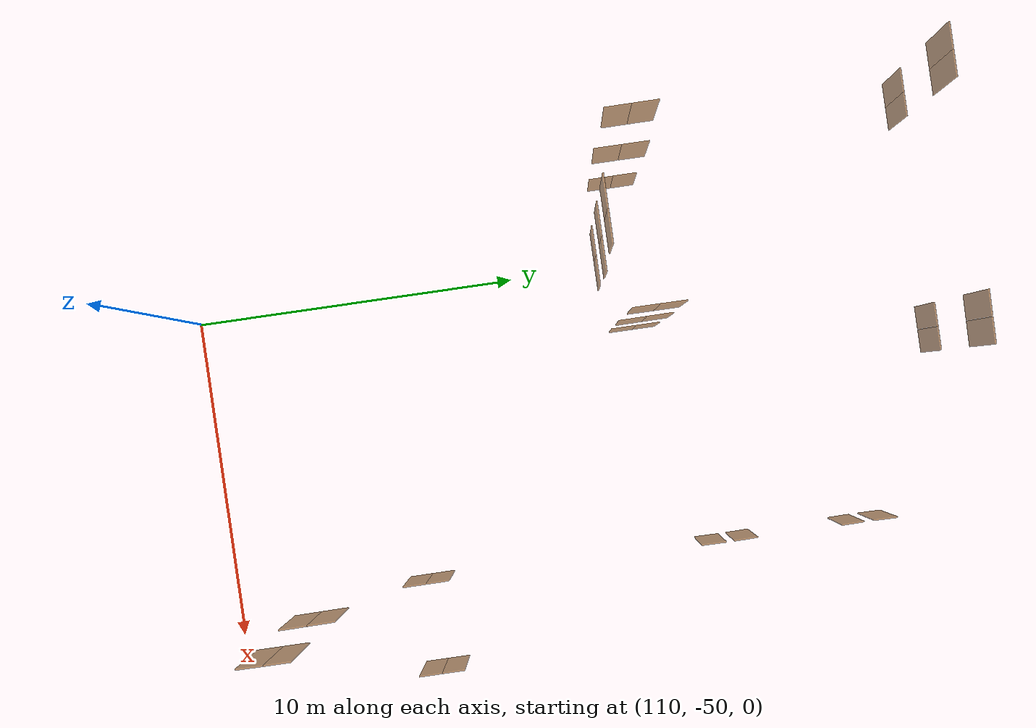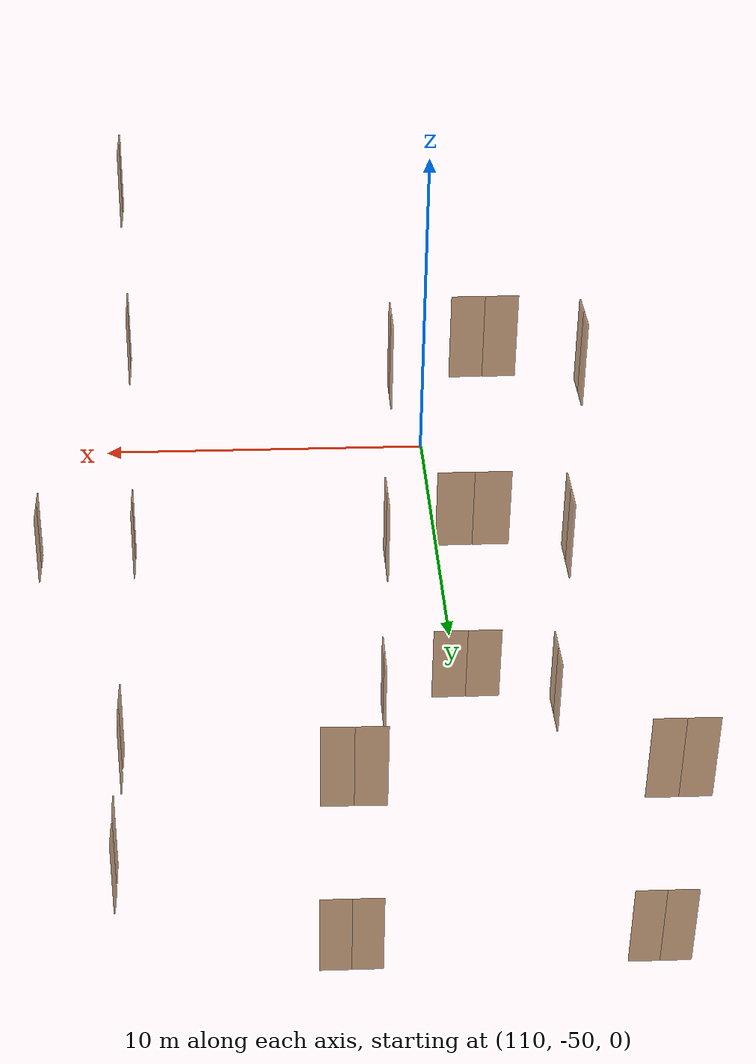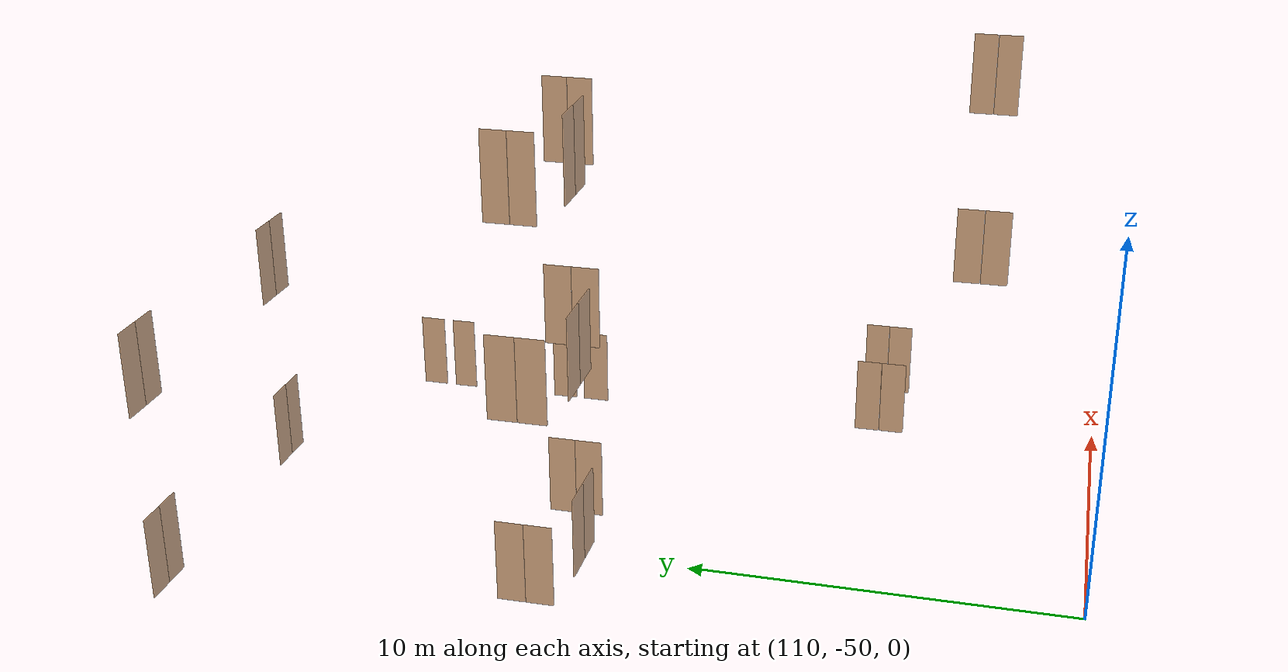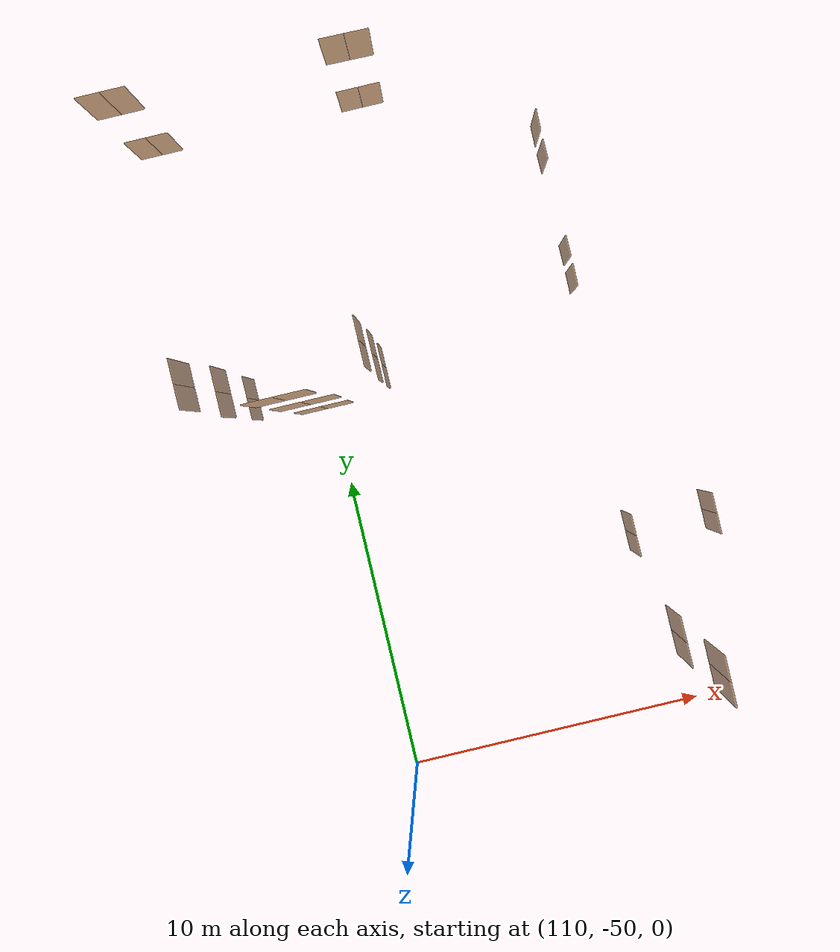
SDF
<sdf version="1.7">
 <world name="sim_world">
  <model name="p126">
   <pose>106.22790806198341 -27.347489704008787 0.0 0 0 0.0005831600636851404</pose>
   <link name="right">
    <pose>0.3715279438291925 0 1.11 0 0 0</pose>
    <visual name="right_visual">
     <geometry><box><size>0.733055887658385 0.03 2.2</size></box></geometry>
     <material>
      <ambient>0.5 0.25 0 0.6</ambient>
      <diffuse>0.5 0.25 0 0.6</diffuse>
      <pbr><metal><metalness>0.0</metalness></metal></pbr>
     </material>
    </visual>
    <collision name="right_collision">
     <geometry><box><size>0.733055887658385 0.03 2.2</size></box></geometry>
     <surface><contact><collide_bitmask>0x02</collide_bitmask></contact></surface>
    </collision>
    <inertial>
     <mass>50.0</mass>
     <inertia><ixx>20.17041666666667</ixx><iyy>22.405712226794265</iyy><izz>2.242795560127595</izz></inertia>
    </inertial>
   </link>
   <joint name="right_joint" type="revolute">
    <parent>world</parent>
    <child>right</child>
    <axis><xyz>0 0 -1</xyz><limit><lower>0</lower><upper>1.57</upper></limit></axis>
    <pose>0.3715279438291925 0 0 0 0 0</pose>
   </joint>
   <link name="left">
    <pose>-0.3715279438291925 0 1.11 0 0 0</pose>
    <visual name="left_visual">
     <geometry><box><size>0.733055887658385 0.03 2.2</size></box></geometry>
     <material>
      <ambient>0.5 0.25 0 0.6</ambient>
      <diffuse>0.5 0.25 0 0.6</diffuse>
      <pbr><metal><metalness>0.0</metalness></metal></pbr>
     </material>
    </visual>
    <collision name="left_collision">
     <geometry><box><size>0.733055887658385 0.03 2.2</size></box></geometry>
     <surface><contact><collide_bitmask>0x02</collide_bitmask></contact></surface>
    </collision>
    <inertial>
     <mass>50.0</mass>
     <inertia><ixx>20.17041666666667</ixx><iyy>22.405712226794265</iyy><izz>2.242795560127595</izz></inertia>
    </inertial>
   </link>
   <joint name="left_joint" type="revolute">
    <parent>world</parent>
    <child>left</child>
    <axis><xyz>0 0 -1</xyz><limit><lower>-1.57</lower><upper>0</upper></limit></axis>
    <pose>-0.3715279438291925 0 0 0 0 0</pose>
   </joint>
   <plugin name="register_component" filename="libregister_component.so">
    <component name="Door">
     <v_max_door>0.5</v_max_door>
     <a_max_door>0.3</a_max_door>
     <a_nom_door>0.15</a_nom_door>
     <dx_min_door>0.01</dx_min_door>
     <f_max_door>500.0</f_max_door>
     <ros_interface>true</ros_interface>
     <door name="p126" type="DoubleSwingDoor" left_joint_name="left_joint" right_joint_name="right_joint"/>
    </component>
   </plugin>
  </model>
  <model name="p127">
   <pose>113.39809561198194 -27.335212290006243 0.0 0 0 0.0</pose>
   <link name="right">
    <pose>0.3711834464163992 0 1.11 0 0 0</pose>
    <visual name="right_visual">
     <geometry><box><size>0.7323668928327984 0.03 2.2</size></box></geometry>
     <material>
      <ambient>0.5 0.25 0 0.6</ambient>
      <diffuse>0.5 0.25 0 0.6</diffuse>
      <pbr><metal><metalness>0.0</metalness></metal></pbr>
     </material>
    </visual>
    <collision name="right_collision">
     <geometry><box><size>0.7323668928327984 0.03 2.2</size></box></geometry>
     <surface><contact><collide_bitmask>0x02</collide_bitmask></contact></surface>
    </collision>
    <inertial>
     <mass>50.0</mass>
     <inertia><ixx>20.17041666666667</ixx><iyy>22.4015052738232</iyy><izz>2.238588607156532</izz></inertia>
    </inertial>
   </link>
   <joint name="right_joint" type="revolute">
    <parent>world</parent>
    <child>right</child>
    <axis><xyz>0 0 -1</xyz><limit><lower>0</lower><upper>1.57</upper></limit></axis>
    <pose>0.3711834464163992 0 0 0 0 0</pose>
   </joint>
   <link name="left">
    <pose>-0.3711834464163992 0 1.11 0 0 0</pose>
    <visual name="left_visual">
     <geometry><box><size>0.7323668928327984 0.03 2.2</size></box></geometry>
     <material>
      <ambient>0.5 0.25 0 0.6</ambient>
      <diffuse>0.5 0.25 0 0.6</diffuse>
      <pbr><metal><metalness>0.0</metalness></metal></pbr>
     </material>
    </visual>
    <collision name="left_collision">
     <geometry><box><size>0.7323668928327984 0.03 2.2</size></box></geometry>
     <surface><contact><collide_bitmask>0x02</collide_bitmask></contact></surface>
    </collision>
    <inertial>
     <mass>50.0</mass>
     <inertia><ixx>20.17041666666667</ixx><iyy>22.4015052738232</iyy><izz>2.238588607156532</izz></inertia>
    </inertial>
   </link>
   <joint name="left_joint" type="revolute">
    <parent>world</parent>
    <child>left</child>
    <axis><xyz>0 0 -1</xyz><limit><lower>-1.57</lower><upper>0</upper></limit></axis>
    <pose>-0.3711834464163992 0 0 0 0 0</pose>
   </joint>
   <plugin name="register_component" filename="libregister_component.so">
    <component name="Door">
     <v_max_door>0.5</v_max_door>
     <a_max_door>0.3</a_max_door>
     <a_nom_door>0.15</a_nom_door>
     <dx_min_door>0.01</dx_min_door>
     <f_max_door>500.0</f_max_door>
     <ros_interface>true</ros_interface>
     <door name="p127" type="DoubleSwingDoor" left_joint_name="left_joint" right_joint_name="right_joint"/>
    </component>
   </plugin>
  </model>
  <model name="p128">
   <pose>107.5139588456639 -36.43407602737699 0.0 0 0 -1.5654466083984129</pose>
   <link name="right">
    <pose>0.36864990802465264 0 1.11 0 0 0</pose>
    <visual name="right_visual">
     <geometry><box><size>0.7272998160493053 0.03 2.2</size></box></geometry>
     <material>
      <ambient>0.5 0.25 0 0.6</ambient>
      <diffuse>0.5 0.25 0 0.6</diffuse>
      <pbr><metal><metalness>0.0</metalness></metal></pbr>
     </material>
    </visual>
    <collision name="right_collision">
     <geometry><box><size>0.7272998160493053 0.03 2.2</size></box></geometry>
     <surface><contact><collide_bitmask>0x02</collide_bitmask></contact></surface>
    </collision>
    <inertial>
     <mass>50.0</mass>
     <inertia><ixx>20.17041666666667</ixx><iyy>22.370687593438976</iyy><izz>2.2077709267723056</izz></inertia>
    </inertial>
   </link>
   <joint name="right_joint" type="revolute">
    <parent>world</parent>
    <child>right</child>
    <axis><xyz>0 0 -1</xyz><limit><lower>0</lower><upper>1.57</upper></limit></axis>
    <pose>0.36864990802465264 0 0 0 0 0</pose>
   </joint>
   <link name="left">
    <pose>-0.36864990802465264 0 1.11 0 0 0</pose>
    <visual name="left_visual">
     <geometry><box><size>0.7272998160493053 0.03 2.2</size></box></geometry>
     <material>
      <ambient>0.5 0.25 0 0.6</ambient>
      <diffuse>0.5 0.25 0 0.6</diffuse>
      <pbr><metal><metalness>0.0</metalness></metal></pbr>
     </material>
    </visual>
    <collision name="left_collision">
     <geometry><box><size>0.7272998160493053 0.03 2.2</size></box></geometry>
     <surface><contact><collide_bitmask>0x02</collide_bitmask></contact></surface>
    </collision>
    <inertial>
     <mass>50.0</mass>
     <inertia><ixx>20.17041666666667</ixx><iyy>22.370687593438976</iyy><izz>2.2077709267723056</izz></inertia>
    </inertial>
   </link>
   <joint name="left_joint" type="revolute">
    <parent>world</parent>
    <child>left</child>
    <axis><xyz>0 0 -1</xyz><limit><lower>-1.57</lower><upper>0</upper></limit></axis>
    <pose>-0.36864990802465264 0 0 0 0 0</pose>
   </joint>
   <plugin name="register_component" filename="libregister_component.so">
    <component name="Door">
     <v_max_door>0.5</v_max_door>
     <a_max_door>0.3</a_max_door>
     <a_nom_door>0.15</a_nom_door>
     <dx_min_door>0.01</dx_min_door>
     <f_max_door>500.0</f_max_door>
     <ros_interface>true</ros_interface>
     <door name="p128" type="DoubleSwingDoor" left_joint_name="left_joint" right_joint_name="right_joint"/>
    </component>
   </plugin>
  </model>
  <model name="p129">
   <pose>112.08784554531726 -36.388321827501436 0.0 0 0 1.5710809539256638</pose>
   <link name="right">
    <pose>0.3708445825899116 0 1.11 0 0 0</pose>
    <visual name="right_visual">
     <geometry><box><size>0.7316891651798232 0.03 2.2</size></box></geometry>
     <material>
      <ambient>0.5 0.25 0 0.6</ambient>
      <diffuse>0.5 0.25 0 0.6</diffuse>
      <pbr><metal><metalness>0.0</metalness></metal></pbr>
     </material>
    </visual>
    <collision name="right_collision">
     <geometry><box><size>0.7316891651798232 0.03 2.2</size></box></geometry>
     <surface><contact><collide_bitmask>0x02</collide_bitmask></contact></surface>
    </collision>
    <inertial>
     <mass>50.0</mass>
     <inertia><ixx>20.17041666666667</ixx><iyy>22.39737097683978</iyy><izz>2.234454310173111</izz></inertia>
    </inertial>
   </link>
   <joint name="right_joint" type="revolute">
    <parent>world</parent>
    <child>right</child>
    <axis><xyz>0 0 -1</xyz><limit><lower>0</lower><upper>1.57</upper></limit></axis>
    <pose>0.3708445825899116 0 0 0 0 0</pose>
   </joint>
   <link name="left">
    <pose>-0.3708445825899116 0 1.11 0 0 0</pose>
    <visual name="left_visual">
     <geometry><box><size>0.7316891651798232 0.03 2.2</size></box></geometry>
     <material>
      <ambient>0.5 0.25 0 0.6</ambient>
      <diffuse>0.5 0.25 0 0.6</diffuse>
      <pbr><metal><metalness>0.0</metalness></metal></pbr>
     </material>
    </visual>
    <collision name="left_collision">
     <geometry><box><size>0.7316891651798232 0.03 2.2</size></box></geometry>
     <surface><contact><collide_bitmask>0x02</collide_bitmask></contact></surface>
    </collision>
    <inertial>
     <mass>50.0</mass>
     <inertia><ixx>20.17041666666667</ixx><iyy>22.39737097683978</iyy><izz>2.234454310173111</izz></inertia>
    </inertial>
   </link>
   <joint name="left_joint" type="revolute">
    <parent>world</parent>
    <child>left</child>
    <axis><xyz>0 0 -1</xyz><limit><lower>-1.57</lower><upper>0</upper></limit></axis>
    <pose>-0.3708445825899116 0 0 0 0 0</pose>
   </joint>
   <plugin name="register_component" filename="libregister_component.so">
    <component name="Door">
     <v_max_door>0.5</v_max_door>
     <a_max_door>0.3</a_max_door>
     <a_nom_door>0.15</a_nom_door>
     <dx_min_door>0.01</dx_min_door>
     <f_max_door>500.0</f_max_door>
     <ros_interface>true</ros_interface>
     <door name="p129" type="DoubleSwingDoor" left_joint_name="left_joint" right_joint_name="right_joint"/>
    </component>
   </plugin>
  </model>
  <model name="p130">
   <pose>109.81211297443048 -37.27618440935086 0.0 0 0 3.141592653589793</pose>
   <link name="right">
    <pose>0.4568031317590595 0 1.11 0 0 0</pose>
    <visual name="right_visual">
     <geometry><box><size>0.903606263518119 0.03 2.2</size></box></geometry>
     <material>
      <ambient>0.5 0.25 0 0.6</ambient>
      <diffuse>0.5 0.25 0 0.6</diffuse>
      <pbr><metal><metalness>0.0</metalness></metal></pbr>
     </material>
    </visual>
    <collision name="right_collision">
     <geometry><box><size>0.903606263518119 0.03 2.2</size></box></geometry>
     <surface><contact><collide_bitmask>0x02</collide_bitmask></contact></surface>
    </collision>
    <inertial>
     <mass>50.0</mass>
     <inertia><ixx>20.17041666666667</ixx><iyy>23.568767831121573</iyy><izz>3.405851164454902</izz></inertia>
    </inertial>
   </link>
   <joint name="right_joint" type="revolute">
    <parent>world</parent>
    <child>right</child>
    <axis><xyz>0 0 -1</xyz><limit><lower>0</lower><upper>1.57</upper></limit></axis>
    <pose>0.4568031317590595 0 0 0 0 0</pose>
   </joint>
   <link name="left">
    <pose>-0.4568031317590595 0 1.11 0 0 0</pose>
    <visual name="left_visual">
     <geometry><box><size>0.903606263518119 0.03 2.2</size></box></geometry>
     <material>
      <ambient>0.5 0.25 0 0.6</ambient>
      <diffuse>0.5 0.25 0 0.6</diffuse>
      <pbr><metal><metalness>0.0</metalness></metal></pbr>
     </material>
    </visual>
    <collision name="left_collision">
     <geometry><box><size>0.903606263518119 0.03 2.2</size></box></geometry>
     <surface><contact><collide_bitmask>0x02</collide_bitmask></contact></surface>
    </collision>
    <inertial>
     <mass>50.0</mass>
     <inertia><ixx>20.17041666666667</ixx><iyy>23.568767831121573</iyy><izz>3.405851164454902</izz></inertia>
    </inertial>
   </link>
   <joint name="left_joint" type="revolute">
    <parent>world</parent>
    <child>left</child>
    <axis><xyz>0 0 -1</xyz><limit><lower>-1.57</lower><upper>0</upper></limit></axis>
    <pose>-0.4568031317590595 0 0 0 0 0</pose>
   </joint>
   <plugin name="register_component" filename="libregister_component.so">
    <component name="Door">
     <v_max_door>0.5</v_max_door>
     <a_max_door>0.3</a_max_door>
     <a_nom_door>0.15</a_nom_door>
     <dx_min_door>0.01</dx_min_door>
     <f_max_door>500.0</f_max_door>
     <ros_interface>true</ros_interface>
     <door name="p130" type="DoubleSwingDoor" left_joint_name="left_joint" right_joint_name="right_joint"/>
    </component>
   </plugin>
  </model>
  <model name="p135">
   <pose>118.94127581405004 -29.71251962904805 0.0 0 0 -1.5863807261847631</pose>
   <link name="right">
    <pose>0 0 1.11 0 0 0</pose>
    <visual name="right_visual">
     <geometry><box><size>0.7314902971582903 0.03 2.2</size></box></geometry>
     <material>
      <ambient>0.5 0.25 0 0.6</ambient>
      <diffuse>0.5 0.25 0 0.6</diffuse>
      <pbr><metal><metalness>0.0</metalness></metal></pbr>
     </material>
    </visual>
    <collision name="right_collision">
     <geometry><box><size>0.7314902971582903 0.03 2.2</size></box></geometry>
     <surface><contact><collide_bitmask>0x02</collide_bitmask></contact></surface>
    </collision>
    <inertial>
     <mass>50.0</mass>
     <inertia><ixx>20.17041666666667</ixx><iyy>22.39615856181969</iyy><izz>2.2332418951530157</izz></inertia>
    </inertial>
   </link>
   <joint name="right_joint" type="revolute">
    <parent>world</parent>
    <child>right</child>
    <axis><xyz>0 0 -1</xyz><limit><lower>0</lower><upper>1.57</upper></limit></axis>
    <pose>0.37074514857914515 0 0 0 0 0</pose>
   </joint>
   <plugin name="register_component" filename="libregister_component.so">
    <component name="Door">
     <v_max_door>0.5</v_max_door>
     <a_max_door>0.3</a_max_door>
     <a_nom_door>0.15</a_nom_door>
     <dx_min_door>0.01</dx_min_door>
     <f_max_door>500.0</f_max_door>
     <ros_interface>true</ros_interface>
     <door name="p135" type="SwingDoor" left_joint_name="empty_joint" right_joint_name="right_joint"/>
    </component>
   </plugin>
  </model>
  <model name="p136">
   <pose>118.94016473585977 -30.710290065479562 0.0 0 0 1.5843613861672066</pose>
   <link name="right">
    <pose>0 0 1.11 0 0 0</pose>
    <visual name="right_visual">
     <geometry><box><size>0.678042918124303 0.03 2.2</size></box></geometry>
     <material>
      <ambient>0.5 0.25 0 0.6</ambient>
      <diffuse>0.5 0.25 0 0.6</diffuse>
      <pbr><metal><metalness>0.0</metalness></metal></pbr>
     </material>
    </visual>
    <collision name="right_collision">
     <geometry><box><size>0.678042918124303 0.03 2.2</size></box></geometry>
     <surface><contact><collide_bitmask>0x02</collide_bitmask></contact></surface>
    </collision>
    <inertial>
     <mass>50.0</mass>
     <inertia><ixx>20.17041666666667</ixx><iyy>22.08225916174384</iyy><izz>1.9193424950771676</izz></inertia>
    </inertial>
   </link>
   <joint name="right_joint" type="revolute">
    <parent>world</parent>
    <child>right</child>
    <axis><xyz>0 0 1</xyz><limit><lower>0</lower><upper>1.57</upper></limit></axis>
    <pose>0.3440214590621515 0 0 0 0 0</pose>
   </joint>
   <plugin name="register_component" filename="libregister_component.so">
    <component name="Door">
     <v_max_door>0.5</v_max_door>
     <a_max_door>0.3</a_max_door>
     <a_nom_door>0.15</a_nom_door>
     <dx_min_door>0.01</dx_min_door>
     <f_max_door>500.0</f_max_door>
     <ros_interface>true</ros_interface>
     <door name="p136" type="SwingDoor" left_joint_name="empty_joint" right_joint_name="right_joint"/>
    </component>
   </plugin>
  </model>
  <model name="p137">
   <pose>118.94985333767897 -33.9887595923084 0.0 0 0 -1.5569377102186739</pose>
   <link name="right">
    <pose>0 0 1.11 0 0 0</pose>
    <visual name="right_visual">
     <geometry><box><size>0.7147814604932263 0.03 2.2</size></box></geometry>
     <material>
      <ambient>0.5 0.25 0 0.6</ambient>
      <diffuse>0.5 0.25 0 0.6</diffuse>
      <pbr><metal><metalness>0.0</metalness></metal></pbr>
     </material>
    </visual>
    <collision name="right_collision">
     <geometry><box><size>0.7147814604932263 0.03 2.2</size></box></geometry>
     <surface><contact><collide_bitmask>0x02</collide_bitmask></contact></surface>
    </collision>
    <inertial>
     <mass>50.0</mass>
     <inertia><ixx>20.17041666666667</ixx><iyy>22.295468901103465</iyy><izz>2.1325522344367904</izz></inertia>
    </inertial>
   </link>
   <joint name="right_joint" type="revolute">
    <parent>world</parent>
    <child>right</child>
    <axis><xyz>0 0 -1</xyz><limit><lower>0</lower><upper>1.57</upper></limit></axis>
    <pose>0.36239073024661317 0 0 0 0 0</pose>
   </joint>
   <plugin name="register_component" filename="libregister_component.so">
    <component name="Door">
     <v_max_door>0.5</v_max_door>
     <a_max_door>0.3</a_max_door>
     <a_nom_door>0.15</a_nom_door>
     <dx_min_door>0.01</dx_min_door>
     <f_max_door>500.0</f_max_door>
     <ros_interface>true</ros_interface>
     <door name="p137" type="SwingDoor" left_joint_name="empty_joint" right_joint_name="right_joint"/>
    </component>
   </plugin>
  </model>
  <model name="p138">
   <pose>118.95024221504556 -34.972163787739646 0.0 0 0 1.558779614172004</pose>
   <link name="right">
    <pose>0 0 1.11 0 0 0</pose>
    <visual name="right_visual">
     <geometry><box><size>0.7611439405069239 0.03 2.2</size></box></geometry>
     <material>
      <ambient>0.5 0.25 0 0.6</ambient>
      <diffuse>0.5 0.25 0 0.6</diffuse>
      <pbr><metal><metalness>0.0</metalness></metal></pbr>
     </material>
    </visual>
    <collision name="right_collision">
     <geometry><box><size>0.7611439405069239 0.03 2.2</size></box></geometry>
     <surface><contact><collide_bitmask>0x02</collide_bitmask></contact></surface>
    </collision>
    <inertial>
     <mass>50.0</mass>
     <inertia><ixx>20.17041666666667</ixx><iyy>22.580583742376703</iyy><izz>2.4176670757100327</izz></inertia>
    </inertial>
   </link>
   <joint name="right_joint" type="revolute">
    <parent>world</parent>
    <child>right</child>
    <axis><xyz>0 0 1</xyz><limit><lower>0</lower><upper>1.57</upper></limit></axis>
    <pose>0.38557197025346196 0 0 0 0 0</pose>
   </joint>
   <plugin name="register_component" filename="libregister_component.so">
    <component name="Door">
     <v_max_door>0.5</v_max_door>
     <a_max_door>0.3</a_max_door>
     <a_nom_door>0.15</a_nom_door>
     <dx_min_door>0.01</dx_min_door>
     <f_max_door>500.0</f_max_door>
     <ros_interface>true</ros_interface>
     <door name="p138" type="SwingDoor" left_joint_name="empty_joint" right_joint_name="right_joint"/>
    </component>
   </plugin>
  </model>
  <model name="p166">
   <pose>118.92442075790356 -43.7870803828035 0.0 0 0 -1.5655743207711172</pose>
   <link name="right">
    <pose>0.3585164879004398 0 1.11 0 0 0</pose>
    <visual name="right_visual">
     <geometry><box><size>0.7070329758008795 0.03 2.2</size></box></geometry>
     <material>
      <ambient>0.5 0.25 0 0.6</ambient>
      <diffuse>0.5 0.25 0 0.6</diffuse>
      <pbr><metal><metalness>0.0</metalness></metal></pbr>
     </material>
    </visual>
    <collision name="right_collision">
     <geometry><box><size>0.7070329758008795 0.03 2.2</size></box></geometry>
     <surface><contact><collide_bitmask>0x02</collide_bitmask></contact></surface>
    </collision>
    <inertial>
     <mass>50.0</mass>
     <inertia><ixx>20.17041666666667</ixx><iyy>22.249565120291035</iyy><izz>2.086648453624363</izz></inertia>
    </inertial>
   </link>
   <joint name="right_joint" type="revolute">
    <parent>world</parent>
    <child>right</child>
    <axis><xyz>0 0 -1</xyz><limit><lower>0</lower><upper>1.57</upper></limit></axis>
    <pose>0.3585164879004398 0 0 0 0 0</pose>
   </joint>
   <link name="left">
    <pose>-0.3585164879004398 0 1.11 0 0 0</pose>
    <visual name="left_visual">
     <geometry><box><size>0.7070329758008795 0.03 2.2</size></box></geometry>
     <material>
      <ambient>0.5 0.25 0 0.6</ambient>
      <diffuse>0.5 0.25 0 0.6</diffuse>
      <pbr><metal><metalness>0.0</metalness></metal></pbr>
     </material>
    </visual>
    <collision name="left_collision">
     <geometry><box><size>0.7070329758008795 0.03 2.2</size></box></geometry>
     <surface><contact><collide_bitmask>0x02</collide_bitmask></contact></surface>
    </collision>
    <inertial>
     <mass>50.0</mass>
     <inertia><ixx>20.17041666666667</ixx><iyy>22.249565120291035</iyy><izz>2.086648453624363</izz></inertia>
    </inertial>
   </link>
   <joint name="left_joint" type="revolute">
    <parent>world</parent>
    <child>left</child>
    <axis><xyz>0 0 -1</xyz><limit><lower>-1.57</lower><upper>0</upper></limit></axis>
    <pose>-0.3585164879004398 0 0 0 0 0</pose>
   </joint>
   <plugin name="register_component" filename="libregister_component.so">
    <component name="Door">
     <v_max_door>0.5</v_max_door>
     <a_max_door>0.3</a_max_door>
     <a_nom_door>0.15</a_nom_door>
     <dx_min_door>0.01</dx_min_door>
     <f_max_door>500.0</f_max_door>
     <ros_interface>true</ros_interface>
     <door name="p166" type="DoubleSwingDoor" left_joint_name="left_joint" right_joint_name="right_joint"/>
    </component>
   </plugin>
  </model>
  <model name="p167">
   <pose>121.67436150040007 -43.68229459867859 0.0 0 0 -1.5689036247144859</pose>
   <link name="right">
    <pose>0.3492847209109035 0 1.11 0 0 0</pose>
    <visual name="right_visual">
     <geometry><box><size>0.688569441821807 0.03 2.2</size></box></geometry>
     <material>
      <ambient>0.5 0.25 0 0.6</ambient>
      <diffuse>0.5 0.25 0 0.6</diffuse>
      <pbr><metal><metalness>0.0</metalness></metal></pbr>
     </material>
    </visual>
    <collision name="right_collision">
     <geometry><box><size>0.688569441821807 0.03 2.2</size></box></geometry>
     <surface><contact><collide_bitmask>0x02</collide_bitmask></contact></surface>
    </collision>
    <inertial>
     <mass>50.0</mass>
     <inertia><ixx>20.17041666666667</ixx><iyy>22.14219948421165</iyy><izz>1.9792828175449788</izz></inertia>
    </inertial>
   </link>
   <joint name="right_joint" type="revolute">
    <parent>world</parent>
    <child>right</child>
    <axis><xyz>0 0 -1</xyz><limit><lower>0</lower><upper>1.57</upper></limit></axis>
    <pose>0.3492847209109035 0 0 0 0 0</pose>
   </joint>
   <link name="left">
    <pose>-0.3492847209109035 0 1.11 0 0 0</pose>
    <visual name="left_visual">
     <geometry><box><size>0.688569441821807 0.03 2.2</size></box></geometry>
     <material>
      <ambient>0.5 0.25 0 0.6</ambient>
      <diffuse>0.5 0.25 0 0.6</diffuse>
      <pbr><metal><metalness>0.0</metalness></metal></pbr>
     </material>
    </visual>
    <collision name="left_collision">
     <geometry><box><size>0.688569441821807 0.03 2.2</size></box></geometry>
     <surface><contact><collide_bitmask>0x02</collide_bitmask></contact></surface>
    </collision>
    <inertial>
     <mass>50.0</mass>
     <inertia><ixx>20.17041666666667</ixx><iyy>22.14219948421165</iyy><izz>1.9792828175449788</izz></inertia>
    </inertial>
   </link>
   <joint name="left_joint" type="revolute">
    <parent>world</parent>
    <child>left</child>
    <axis><xyz>0 0 -1</xyz><limit><lower>-1.57</lower><upper>0</upper></limit></axis>
    <pose>-0.3492847209109035 0 0 0 0 0</pose>
   </joint>
   <plugin name="register_component" filename="libregister_component.so">
    <component name="Door">
     <v_max_door>0.5</v_max_door>
     <a_max_door>0.3</a_max_door>
     <a_nom_door>0.15</a_nom_door>
     <dx_min_door>0.01</dx_min_door>
     <f_max_door>500.0</f_max_door>
     <ros_interface>true</ros_interface>
     <door name="p167" type="DoubleSwingDoor" left_joint_name="left_joint" right_joint_name="right_joint"/>
    </component>
   </plugin>
  </model>
  <model name="puerta23">
   <pose>118.91790391669002 -46.442915310247415 5.0 0 0 1.5815670690349113</pose>
   <link name="right">
    <pose>0.38305469390130353 0 1.11 0 0 0</pose>
    <visual name="right_visual">
     <geometry><box><size>0.7561093878026071 0.03 2.2</size></box></geometry>
     <material>
      <ambient>0.5 0.25 0 0.6</ambient>
      <diffuse>0.5 0.25 0 0.6</diffuse>
      <pbr><metal><metalness>0.0</metalness></metal></pbr>
     </material>
    </visual>
    <collision name="right_collision">
     <geometry><box><size>0.7561093878026071 0.03 2.2</size></box></geometry>
     <surface><contact><collide_bitmask>0x02</collide_bitmask></contact></surface>
    </collision>
    <inertial>
     <mass>50.0</mass>
     <inertia><ixx>20.17041666666667</ixx><iyy>22.548755859680142</iyy><izz>2.3858391930134717</izz></inertia>
    </inertial>
   </link>
   <joint name="right_joint" type="revolute">
    <parent>world</parent>
    <child>right</child>
    <axis><xyz>0 0 1</xyz><limit><lower>0</lower><upper>1.57</upper></limit></axis>
    <pose>0.38305469390130353 0 0 0 0 0</pose>
   </joint>
   <link name="left">
    <pose>-0.38305469390130353 0 1.11 0 0 0</pose>
    <visual name="left_visual">
     <geometry><box><size>0.7561093878026071 0.03 2.2</size></box></geometry>
     <material>
      <ambient>0.5 0.25 0 0.6</ambient>
      <diffuse>0.5 0.25 0 0.6</diffuse>
      <pbr><metal><metalness>0.0</metalness></metal></pbr>
     </material>
    </visual>
    <collision name="left_collision">
     <geometry><box><size>0.7561093878026071 0.03 2.2</size></box></geometry>
     <surface><contact><collide_bitmask>0x02</collide_bitmask></contact></surface>
    </collision>
    <inertial>
     <mass>50.0</mass>
     <inertia><ixx>20.17041666666667</ixx><iyy>22.548755859680142</iyy><izz>2.3858391930134717</izz></inertia>
    </inertial>
   </link>
   <joint name="left_joint" type="revolute">
    <parent>world</parent>
    <child>left</child>
    <axis><xyz>0 0 1</xyz><limit><lower>-1.57</lower><upper>0</upper></limit></axis>
    <pose>-0.38305469390130353 0 0 0 0 0</pose>
   </joint>
   <plugin name="register_component" filename="libregister_component.so">
    <component name="Door">
     <v_max_door>0.5</v_max_door>
     <a_max_door>0.3</a_max_door>
     <a_nom_door>0.15</a_nom_door>
     <dx_min_door>0.01</dx_min_door>
     <f_max_door>500.0</f_max_door>
     <ros_interface>true</ros_interface>
     <door name="puerta23" type="DoubleSwingDoor" left_joint_name="left_joint" right_joint_name="right_joint"/>
    </component>
   </plugin>
  </model>
  <model name="puerta81">
   <pose>109.828570021357 -37.26032395037422 5.0 0 0 -3.1414395949889693</pose>
   <link name="right">
    <pose>0.47375336932335305 0 1.11 0 0 0</pose>
    <visual name="right_visual">
     <geometry><box><size>0.9375067386467061 0.03 2.2</size></box></geometry>
     <material>
      <ambient>0.5 0.25 0 0.6</ambient>
      <diffuse>0.5 0.25 0 0.6</diffuse>
      <pbr><metal><metalness>0.0</metalness></metal></pbr>
     </material>
    </visual>
    <collision name="right_collision">
     <geometry><box><size>0.9375067386467061 0.03 2.2</size></box></geometry>
     <surface><contact><collide_bitmask>0x02</collide_bitmask></contact></surface>
    </collision>
    <inertial>
     <mass>50.0</mass>
     <inertia><ixx>20.17041666666667</ixx><iyy>23.828828687533267</iyy><izz>3.6659120208665974</izz></inertia>
    </inertial>
   </link>
   <joint name="right_joint" type="revolute">
    <parent>world</parent>
    <child>right</child>
    <axis><xyz>0 0 -1</xyz><limit><lower>0</lower><upper>1.57</upper></limit></axis>
    <pose>0.47375336932335305 0 0 0 0 0</pose>
   </joint>
   <link name="left">
    <pose>-0.47375336932335305 0 1.11 0 0 0</pose>
    <visual name="left_visual">
     <geometry><box><size>0.9375067386467061 0.03 2.2</size></box></geometry>
     <material>
      <ambient>0.5 0.25 0 0.6</ambient>
      <diffuse>0.5 0.25 0 0.6</diffuse>
      <pbr><metal><metalness>0.0</metalness></metal></pbr>
     </material>
    </visual>
    <collision name="left_collision">
     <geometry><box><size>0.9375067386467061 0.03 2.2</size></box></geometry>
     <surface><contact><collide_bitmask>0x02</collide_bitmask></contact></surface>
    </collision>
    <inertial>
     <mass>50.0</mass>
     <inertia><ixx>20.17041666666667</ixx><iyy>23.828828687533267</iyy><izz>3.6659120208665974</izz></inertia>
    </inertial>
   </link>
   <joint name="left_joint" type="revolute">
    <parent>world</parent>
    <child>left</child>
    <axis><xyz>0 0 -1</xyz><limit><lower>-1.57</lower><upper>0</upper></limit></axis>
    <pose>-0.47375336932335305 0 0 0 0 0</pose>
   </joint>
   <plugin name="register_component" filename="libregister_component.so">
    <component name="Door">
     <v_max_door>0.5</v_max_door>
     <a_max_door>0.3</a_max_door>
     <a_nom_door>0.15</a_nom_door>
     <dx_min_door>0.01</dx_min_door>
     <f_max_door>500.0</f_max_door>
     <ros_interface>true</ros_interface>
     <door name="puerta81" type="DoubleSwingDoor" left_joint_name="left_joint" right_joint_name="right_joint"/>
    </component>
   </plugin>
  </model>
  <model name="puerta82">
   <pose>107.51228227724764 -36.39963601140706 5.0 0 0 -1.5710862818394422</pose>
   <link name="right">
    <pose>0.37624912113745007 0 1.11 0 0 0</pose>
    <visual name="right_visual">
     <geometry><box><size>0.7424982422749001 0.03 2.2</size></box></geometry>
     <material>
      <ambient>0.5 0.25 0 0.6</ambient>
      <diffuse>0.5 0.25 0 0.6</diffuse>
      <pbr><metal><metalness>0.0</metalness></metal></pbr>
     </material>
    </visual>
    <collision name="right_collision">
     <geometry><box><size>0.7424982422749001 0.03 2.2</size></box></geometry>
     <surface><contact><collide_bitmask>0x02</collide_bitmask></contact></surface>
    </collision>
    <inertial>
     <mass>50.0</mass>
     <inertia><ixx>20.17041666666667</ixx><iyy>22.463765165755486</iyy><izz>2.300848499088818</izz></inertia>
    </inertial>
   </link>
   <joint name="right_joint" type="revolute">
    <parent>world</parent>
    <child>right</child>
    <axis><xyz>0 0 -1</xyz><limit><lower>0</lower><upper>1.57</upper></limit></axis>
    <pose>0.37624912113745007 0 0 0 0 0</pose>
   </joint>
   <link name="left">
    <pose>-0.37624912113745007 0 1.11 0 0 0</pose>
    <visual name="left_visual">
     <geometry><box><size>0.7424982422749001 0.03 2.2</size></box></geometry>
     <material>
      <ambient>0.5 0.25 0 0.6</ambient>
      <diffuse>0.5 0.25 0 0.6</diffuse>
      <pbr><metal><metalness>0.0</metalness></metal></pbr>
     </material>
    </visual>
    <collision name="left_collision">
     <geometry><box><size>0.7424982422749001 0.03 2.2</size></box></geometry>
     <surface><contact><collide_bitmask>0x02</collide_bitmask></contact></surface>
    </collision>
    <inertial>
     <mass>50.0</mass>
     <inertia><ixx>20.17041666666667</ixx><iyy>22.463765165755486</iyy><izz>2.300848499088818</izz></inertia>
    </inertial>
   </link>
   <joint name="left_joint" type="revolute">
    <parent>world</parent>
    <child>left</child>
    <axis><xyz>0 0 -1</xyz><limit><lower>-1.57</lower><upper>0</upper></limit></axis>
    <pose>-0.37624912113745007 0 0 0 0 0</pose>
   </joint>
   <plugin name="register_component" filename="libregister_component.so">
    <component name="Door">
     <v_max_door>0.5</v_max_door>
     <a_max_door>0.3</a_max_door>
     <a_nom_door>0.15</a_nom_door>
     <dx_min_door>0.01</dx_min_door>
     <f_max_door>500.0</f_max_door>
     <ros_interface>true</ros_interface>
     <door name="puerta82" type="DoubleSwingDoor" left_joint_name="left_joint" right_joint_name="right_joint"/>
    </component>
   </plugin>
  </model>
  <model name="puerta83">
   <pose>112.1007556834348 -36.39406654813839 5.0 0 0 1.5772090610513327</pose>
   <link name="right">
    <pose>0.3701334955898605 0 1.11 0 0 0</pose>
    <visual name="right_visual">
     <geometry><box><size>0.7302669911797209 0.03 2.2</size></box></geometry>
     <material>
      <ambient>0.5 0.25 0 0.6</ambient>
      <diffuse>0.5 0.25 0 0.6</diffuse>
      <pbr><metal><metalness>0.0</metalness></metal></pbr>
     </material>
    </visual>
    <collision name="right_collision">
     <geometry><box><size>0.7302669911797209 0.03 2.2</size></box></geometry>
     <surface><contact><collide_bitmask>0x02</collide_bitmask></contact></surface>
    </collision>
    <inertial>
     <mass>50.0</mass>
     <inertia><ixx>20.17041666666667</ixx><iyy>22.388707826694514</iyy><izz>2.2257911600278444</izz></inertia>
    </inertial>
   </link>
   <joint name="right_joint" type="revolute">
    <parent>world</parent>
    <child>right</child>
    <axis><xyz>0 0 -1</xyz><limit><lower>0</lower><upper>1.57</upper></limit></axis>
    <pose>0.3701334955898605 0 0 0 0 0</pose>
   </joint>
   <link name="left">
    <pose>-0.3701334955898605 0 1.11 0 0 0</pose>
    <visual name="left_visual">
     <geometry><box><size>0.7302669911797209 0.03 2.2</size></box></geometry>
     <material>
      <ambient>0.5 0.25 0 0.6</ambient>
      <diffuse>0.5 0.25 0 0.6</diffuse>
      <pbr><metal><metalness>0.0</metalness></metal></pbr>
     </material>
    </visual>
    <collision name="left_collision">
     <geometry><box><size>0.7302669911797209 0.03 2.2</size></box></geometry>
     <surface><contact><collide_bitmask>0x02</collide_bitmask></contact></surface>
    </collision>
    <inertial>
     <mass>50.0</mass>
     <inertia><ixx>20.17041666666667</ixx><iyy>22.388707826694514</iyy><izz>2.2257911600278444</izz></inertia>
    </inertial>
   </link>
   <joint name="left_joint" type="revolute">
    <parent>world</parent>
    <child>left</child>
    <axis><xyz>0 0 -1</xyz><limit><lower>-1.57</lower><upper>0</upper></limit></axis>
    <pose>-0.3701334955898605 0 0 0 0 0</pose>
   </joint>
   <plugin name="register_component" filename="libregister_component.so">
    <component name="Door">
     <v_max_door>0.5</v_max_door>
     <a_max_door>0.3</a_max_door>
     <a_nom_door>0.15</a_nom_door>
     <dx_min_door>0.01</dx_min_door>
     <f_max_door>500.0</f_max_door>
     <ros_interface>true</ros_interface>
     <door name="puerta83" type="DoubleSwingDoor" left_joint_name="left_joint" right_joint_name="right_joint"/>
    </component>
   </plugin>
  </model>
  <model name="puerta84">
   <pose>106.24265931915869 -27.358428835902476 5.0 0 0 0.00015305860082430423</pose>
   <link name="right">
    <pose>0.3730487612219118 0 1.11 0 0 0</pose>
    <visual name="right_visual">
     <geometry><box><size>0.7360975224438235 0.03 2.2</size></box></geometry>
     <material>
      <ambient>0.5 0.25 0 0.6</ambient>
      <diffuse>0.5 0.25 0 0.6</diffuse>
      <pbr><metal><metalness>0.0</metalness></metal></pbr>
     </material>
    </visual>
    <collision name="right_collision">
     <geometry><box><size>0.7360975224438235 0.03 2.2</size></box></geometry>
     <surface><contact><collide_bitmask>0x02</collide_bitmask></contact></surface>
    </collision>
    <inertial>
     <mass>50.0</mass>
     <inertia><ixx>20.17041666666667</ixx><iyy>22.424331510616405</iyy><izz>2.261414843949731</izz></inertia>
    </inertial>
   </link>
   <joint name="right_joint" type="revolute">
    <parent>world</parent>
    <child>right</child>
    <axis><xyz>0 0 -1</xyz><limit><lower>0</lower><upper>1.57</upper></limit></axis>
    <pose>0.3730487612219118 0 0 0 0 0</pose>
   </joint>
   <link name="left">
    <pose>-0.3730487612219118 0 1.11 0 0 0</pose>
    <visual name="left_visual">
     <geometry><box><size>0.7360975224438235 0.03 2.2</size></box></geometry>
     <material>
      <ambient>0.5 0.25 0 0.6</ambient>
      <diffuse>0.5 0.25 0 0.6</diffuse>
      <pbr><metal><metalness>0.0</metalness></metal></pbr>
     </material>
    </visual>
    <collision name="left_collision">
     <geometry><box><size>0.7360975224438235 0.03 2.2</size></box></geometry>
     <surface><contact><collide_bitmask>0x02</collide_bitmask></contact></surface>
    </collision>
    <inertial>
     <mass>50.0</mass>
     <inertia><ixx>20.17041666666667</ixx><iyy>22.424331510616405</iyy><izz>2.261414843949731</izz></inertia>
    </inertial>
   </link>
   <joint name="left_joint" type="revolute">
    <parent>world</parent>
    <child>left</child>
    <axis><xyz>0 0 -1</xyz><limit><lower>-1.57</lower><upper>0</upper></limit></axis>
    <pose>-0.3730487612219118 0 0 0 0 0</pose>
   </joint>
   <plugin name="register_component" filename="libregister_component.so">
    <component name="Door">
     <v_max_door>0.5</v_max_door>
     <a_max_door>0.3</a_max_door>
     <a_nom_door>0.15</a_nom_door>
     <dx_min_door>0.01</dx_min_door>
     <f_max_door>500.0</f_max_door>
     <ros_interface>true</ros_interface>
     <door name="puerta84" type="DoubleSwingDoor" left_joint_name="left_joint" right_joint_name="right_joint"/>
    </component>
   </plugin>
  </model>
  <model name="puerta87">
   <pose>113.38915490066145 -27.335277221274165 5.0 0 0 -0.016184671702972744</pose>
   <link name="right">
    <pose>0.3710425166859308 0 1.11 0 0 0</pose>
    <visual name="right_visual">
     <geometry><box><size>0.7320850333718616 0.03 2.2</size></box></geometry>
     <material>
      <ambient>0.5 0.25 0 0.6</ambient>
      <diffuse>0.5 0.25 0 0.6</diffuse>
      <pbr><metal><metalness>0.0</metalness></metal></pbr>
     </material>
    </visual>
    <collision name="right_collision">
     <geometry><box><size>0.7320850333718616 0.03 2.2</size></box></geometry>
     <surface><contact><collide_bitmask>0x02</collide_bitmask></contact></surface>
    </collision>
    <inertial>
     <mass>50.0</mass>
     <inertia><ixx>20.17041666666667</ixx><iyy>22.399785400362834</iyy><izz>2.236868733696166</izz></inertia>
    </inertial>
   </link>
   <joint name="right_joint" type="revolute">
    <parent>world</parent>
    <child>right</child>
    <axis><xyz>0 0 -1</xyz><limit><lower>0</lower><upper>1.57</upper></limit></axis>
    <pose>0.3710425166859308 0 0 0 0 0</pose>
   </joint>
   <link name="left">
    <pose>-0.3710425166859308 0 1.11 0 0 0</pose>
    <visual name="left_visual">
     <geometry><box><size>0.7320850333718616 0.03 2.2</size></box></geometry>
     <material>
      <ambient>0.5 0.25 0 0.6</ambient>
      <diffuse>0.5 0.25 0 0.6</diffuse>
      <pbr><metal><metalness>0.0</metalness></metal></pbr>
     </material>
    </visual>
    <collision name="left_collision">
     <geometry><box><size>0.7320850333718616 0.03 2.2</size></box></geometry>
     <surface><contact><collide_bitmask>0x02</collide_bitmask></contact></surface>
    </collision>
    <inertial>
     <mass>50.0</mass>
     <inertia><ixx>20.17041666666667</ixx><iyy>22.399785400362834</iyy><izz>2.236868733696166</izz></inertia>
    </inertial>
   </link>
   <joint name="left_joint" type="revolute">
    <parent>world</parent>
    <child>left</child>
    <axis><xyz>0 0 -1</xyz><limit><lower>-1.57</lower><upper>0</upper></limit></axis>
    <pose>-0.3710425166859308 0 0 0 0 0</pose>
   </joint>
   <plugin name="register_component" filename="libregister_component.so">
    <component name="Door">
     <v_max_door>0.5</v_max_door>
     <a_max_door>0.3</a_max_door>
     <a_nom_door>0.15</a_nom_door>
     <dx_min_door>0.01</dx_min_door>
     <f_max_door>500.0</f_max_door>
     <ros_interface>true</ros_interface>
     <door name="puerta87" type="DoubleSwingDoor" left_joint_name="left_joint" right_joint_name="right_joint"/>
    </component>
   </plugin>
  </model>
  <model name="puerta111">
   <pose>118.90949840834253 -46.45121509332547 10.0 0 0 1.5691390081404823</pose>
   <link name="right">
    <pose>0.3250149118289484 0 1.11 0 0 0</pose>
    <visual name="right_visual">
     <geometry><box><size>0.6400298236578968 0.03 2.2</size></box></geometry>
     <material>
      <ambient>0.5 0.25 0 0.6</ambient>
      <diffuse>0.5 0.25 0 0.6</diffuse>
      <pbr><metal><metalness>0.0</metalness></metal></pbr>
     </material>
    </visual>
    <collision name="right_collision">
     <geometry><box><size>0.6400298236578968 0.03 2.2</size></box></geometry>
     <surface><contact><collide_bitmask>0x02</collide_bitmask></contact></surface>
    </collision>
    <inertial>
     <mass>50.0</mass>
     <inertia><ixx>20.17041666666667</ixx><iyy>21.873492396548166</iyy><izz>1.710575729881494</izz></inertia>
    </inertial>
   </link>
   <joint name="right_joint" type="revolute">
    <parent>world</parent>
    <child>right</child>
    <axis><xyz>0 0 1</xyz><limit><lower>0</lower><upper>1.57</upper></limit></axis>
    <pose>0.3250149118289484 0 0 0 0 0</pose>
   </joint>
   <link name="left">
    <pose>-0.3250149118289484 0 1.11 0 0 0</pose>
    <visual name="left_visual">
     <geometry><box><size>0.6400298236578968 0.03 2.2</size></box></geometry>
     <material>
      <ambient>0.5 0.25 0 0.6</ambient>
      <diffuse>0.5 0.25 0 0.6</diffuse>
      <pbr><metal><metalness>0.0</metalness></metal></pbr>
     </material>
    </visual>
    <collision name="left_collision">
     <geometry><box><size>0.6400298236578968 0.03 2.2</size></box></geometry>
     <surface><contact><collide_bitmask>0x02</collide_bitmask></contact></surface>
    </collision>
    <inertial>
     <mass>50.0</mass>
     <inertia><ixx>20.17041666666667</ixx><iyy>21.873492396548166</iyy><izz>1.710575729881494</izz></inertia>
    </inertial>
   </link>
   <joint name="left_joint" type="revolute">
    <parent>world</parent>
    <child>left</child>
    <axis><xyz>0 0 1</xyz><limit><lower>-1.57</lower><upper>0</upper></limit></axis>
    <pose>-0.3250149118289484 0 0 0 0 0</pose>
   </joint>
   <plugin name="register_component" filename="libregister_component.so">
    <component name="Door">
     <v_max_door>0.5</v_max_door>
     <a_max_door>0.3</a_max_door>
     <a_nom_door>0.15</a_nom_door>
     <dx_min_door>0.01</dx_min_door>
     <f_max_door>500.0</f_max_door>
     <ros_interface>true</ros_interface>
     <door name="puerta111" type="DoubleSwingDoor" left_joint_name="left_joint" right_joint_name="right_joint"/>
    </component>
   </plugin>
  </model>
  <model name="puerta155">
   <pose>109.7827159421239 -37.2672042517251 10.0 0 0 -3.1404665594372374</pose>
   <link name="right">
    <pose>0.4061348160004886 0 1.11 0 0 0</pose>
    <visual name="right_visual">
     <geometry><box><size>0.8022696320009772 0.03 2.2</size></box></geometry>
     <material>
      <ambient>0.5 0.25 0 0.6</ambient>
      <diffuse>0.5 0.25 0 0.6</diffuse>
      <pbr><metal><metalness>0.0</metalness></metal></pbr>
     </material>
    </visual>
    <collision name="right_collision">
     <geometry><box><size>0.8022696320009772 0.03 2.2</size></box></geometry>
     <surface><contact><collide_bitmask>0x02</collide_bitmask></contact></surface>
    </collision>
    <inertial>
     <mass>50.0</mass>
     <inertia><ixx>20.17041666666667</ixx><iyy>22.848485676795768</iyy><izz>2.685569010129098</izz></inertia>
    </inertial>
   </link>
   <joint name="right_joint" type="revolute">
    <parent>world</parent>
    <child>right</child>
    <axis><xyz>0 0 -1</xyz><limit><lower>0</lower><upper>1.57</upper></limit></axis>
    <pose>0.4061348160004886 0 0 0 0 0</pose>
   </joint>
   <link name="left">
    <pose>-0.4061348160004886 0 1.11 0 0 0</pose>
    <visual name="left_visual">
     <geometry><box><size>0.8022696320009772 0.03 2.2</size></box></geometry>
     <material>
      <ambient>0.5 0.25 0 0.6</ambient>
      <diffuse>0.5 0.25 0 0.6</diffuse>
      <pbr><metal><metalness>0.0</metalness></metal></pbr>
     </material>
    </visual>
    <collision name="left_collision">
     <geometry><box><size>0.8022696320009772 0.03 2.2</size></box></geometry>
     <surface><contact><collide_bitmask>0x02</collide_bitmask></contact></surface>
    </collision>
    <inertial>
     <mass>50.0</mass>
     <inertia><ixx>20.17041666666667</ixx><iyy>22.848485676795768</iyy><izz>2.685569010129098</izz></inertia>
    </inertial>
   </link>
   <joint name="left_joint" type="revolute">
    <parent>world</parent>
    <child>left</child>
    <axis><xyz>0 0 -1</xyz><limit><lower>-1.57</lower><upper>0</upper></limit></axis>
    <pose>-0.4061348160004886 0 0 0 0 0</pose>
   </joint>
   <plugin name="register_component" filename="libregister_component.so">
    <component name="Door">
     <v_max_door>0.5</v_max_door>
     <a_max_door>0.3</a_max_door>
     <a_nom_door>0.15</a_nom_door>
     <dx_min_door>0.01</dx_min_door>
     <f_max_door>500.0</f_max_door>
     <ros_interface>true</ros_interface>
     <door name="puerta155" type="DoubleSwingDoor" left_joint_name="left_joint" right_joint_name="right_joint"/>
    </component>
   </plugin>
  </model>
  <model name="puerta156">
   <pose>107.52628395113476 -36.40505634000154 10.0 0 0 -1.5657720550136576</pose>
   <link name="right">
    <pose>0.32176782706112433 0 1.11 0 0 0</pose>
    <visual name="right_visual">
     <geometry><box><size>0.6335356541222487 0.03 2.2</size></box></geometry>
     <material>
      <ambient>0.5 0.25 0 0.6</ambient>
      <diffuse>0.5 0.25 0 0.6</diffuse>
      <pbr><metal><metalness>0.0</metalness></metal></pbr>
     </material>
    </visual>
    <collision name="right_collision">
     <geometry><box><size>0.6335356541222487 0.03 2.2</size></box></geometry>
     <surface><contact><collide_bitmask>0x02</collide_bitmask></contact></surface>
    </collision>
    <inertial>
     <mass>50.0</mass>
     <inertia><ixx>20.17041666666667</ixx><iyy>21.839030937683777</iyy><izz>1.6761142710171064</izz></inertia>
    </inertial>
   </link>
   <joint name="right_joint" type="revolute">
    <parent>world</parent>
    <child>right</child>
    <axis><xyz>0 0 -1</xyz><limit><lower>0</lower><upper>1.57</upper></limit></axis>
    <pose>0.32176782706112433 0 0 0 0 0</pose>
   </joint>
   <link name="left">
    <pose>-0.32176782706112433 0 1.11 0 0 0</pose>
    <visual name="left_visual">
     <geometry><box><size>0.6335356541222487 0.03 2.2</size></box></geometry>
     <material>
      <ambient>0.5 0.25 0 0.6</ambient>
      <diffuse>0.5 0.25 0 0.6</diffuse>
      <pbr><metal><metalness>0.0</metalness></metal></pbr>
     </material>
    </visual>
    <collision name="left_collision">
     <geometry><box><size>0.6335356541222487 0.03 2.2</size></box></geometry>
     <surface><contact><collide_bitmask>0x02</collide_bitmask></contact></surface>
    </collision>
    <inertial>
     <mass>50.0</mass>
     <inertia><ixx>20.17041666666667</ixx><iyy>21.839030937683777</iyy><izz>1.6761142710171064</izz></inertia>
    </inertial>
   </link>
   <joint name="left_joint" type="revolute">
    <parent>world</parent>
    <child>left</child>
    <axis><xyz>0 0 -1</xyz><limit><lower>-1.57</lower><upper>0</upper></limit></axis>
    <pose>-0.32176782706112433 0 0 0 0 0</pose>
   </joint>
   <plugin name="register_component" filename="libregister_component.so">
    <component name="Door">
     <v_max_door>0.5</v_max_door>
     <a_max_door>0.3</a_max_door>
     <a_nom_door>0.15</a_nom_door>
     <dx_min_door>0.01</dx_min_door>
     <f_max_door>500.0</f_max_door>
     <ros_interface>true</ros_interface>
     <door name="puerta156" type="DoubleSwingDoor" left_joint_name="left_joint" right_joint_name="right_joint"/>
    </component>
   </plugin>
  </model>
  <model name="puerta157">
   <pose>112.09696612672786 -36.40984955923125 10.0 0 0 1.5685074265599428</pose>
   <link name="right">
    <pose>0.32059261514922177 0 1.11 0 0 0</pose>
    <visual name="right_visual">
     <geometry><box><size>0.6311852302984435 0.03 2.2</size></box></geometry>
     <material>
      <ambient>0.5 0.25 0 0.6</ambient>
      <diffuse>0.5 0.25 0 0.6</diffuse>
      <pbr><metal><metalness>0.0</metalness></metal></pbr>
     </material>
    </visual>
    <collision name="right_collision">
     <geometry><box><size>0.6311852302984435 0.03 2.2</size></box></geometry>
     <surface><contact><collide_bitmask>0x02</collide_bitmask></contact></surface>
    </collision>
    <inertial>
     <mass>50.0</mass>
     <inertia><ixx>20.17041666666667</ixx><iyy>21.826644978945417</iyy><izz>1.663728312278747</izz></inertia>
    </inertial>
   </link>
   <joint name="right_joint" type="revolute">
    <parent>world</parent>
    <child>right</child>
    <axis><xyz>0 0 -1</xyz><limit><lower>0</lower><upper>1.57</upper></limit></axis>
    <pose>0.32059261514922177 0 0 0 0 0</pose>
   </joint>
   <link name="left">
    <pose>-0.32059261514922177 0 1.11 0 0 0</pose>
    <visual name="left_visual">
     <geometry><box><size>0.6311852302984435 0.03 2.2</size></box></geometry>
     <material>
      <ambient>0.5 0.25 0 0.6</ambient>
      <diffuse>0.5 0.25 0 0.6</diffuse>
      <pbr><metal><metalness>0.0</metalness></metal></pbr>
     </material>
    </visual>
    <collision name="left_collision">
     <geometry><box><size>0.6311852302984435 0.03 2.2</size></box></geometry>
     <surface><contact><collide_bitmask>0x02</collide_bitmask></contact></surface>
    </collision>
    <inertial>
     <mass>50.0</mass>
     <inertia><ixx>20.17041666666667</ixx><iyy>21.826644978945417</iyy><izz>1.663728312278747</izz></inertia>
    </inertial>
   </link>
   <joint name="left_joint" type="revolute">
    <parent>world</parent>
    <child>left</child>
    <axis><xyz>0 0 -1</xyz><limit><lower>-1.57</lower><upper>0</upper></limit></axis>
    <pose>-0.32059261514922177 0 0 0 0 0</pose>
   </joint>
   <plugin name="register_component" filename="libregister_component.so">
    <component name="Door">
     <v_max_door>0.5</v_max_door>
     <a_max_door>0.3</a_max_door>
     <a_nom_door>0.15</a_nom_door>
     <dx_min_door>0.01</dx_min_door>
     <f_max_door>500.0</f_max_door>
     <ros_interface>true</ros_interface>
     <door name="puerta157" type="DoubleSwingDoor" left_joint_name="left_joint" right_joint_name="right_joint"/>
    </component>
   </plugin>
  </model>
 </world>
</sdf>
